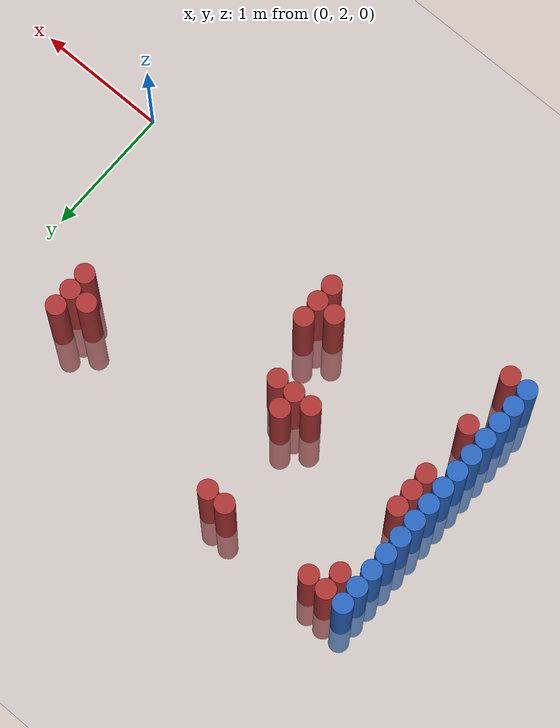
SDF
<sdf version="1.6">
 <world name="default">
  <model name="ground_plane">
   <static>1</static>
   <link name="link">
    <collision name="collision">
     <geometry><plane><normal>0 0 1</normal><size>100 100</size></plane></geometry>
     <surface><friction><ode><mu>100</mu><mu2>50</mu2></ode></friction></surface>
    </collision>
    <visual name="visual">
     <cast_shadows>0</cast_shadows>
     <geometry><plane><normal>0 0 1</normal><size>100 100</size></plane></geometry>
     <material>
      <script><uri>file://media/materials/scripts/gazebo.material</uri><name>Gazebo/Grey</name></script>
     </material>
    </visual>
   </link>
  </model>
  <model name="unit_cylinder_141">
   <static>1</static>
   <pose>-3.425000 1.975000 0.000000 0.000000 0.000000 0.000000</pose>
   <link name="link">
    <inertial>
     <mass>1</mass>
     <inertia><ixx>0.145833</ixx><ixy>0</ixy><ixz>0</ixz><iyy>0.145833</iyy><iyz>0</iyz><izz>0.125</izz></inertia>
    </inertial>
    <collision name="collision">
     <geometry><cylinder><radius>0.075000</radius><length>1.5</length></cylinder></geometry>
    </collision>
    <visual name="visual">
     <geometry><cylinder><radius>0.075000</radius><length>1.5</length></cylinder></geometry>
     <material>
      <ambient>0.152000 0.379000 0.720000 1</ambient>
      <diffuse>0.152000 0.379000 0.720000 1</diffuse>
     </material>
     <material>
      <script><name>Gazebo/Grey</name><uri>file://media/materials/scripts/gazebo.material</uri></script>
     </material>
    </visual>
   </link>
  </model>
  <model name="unit_cylinder_143">
   <static>1</static>
   <pose>-3.425000 2.125000 0.000000 0.000000 0.000000 0.000000</pose>
   <link name="link">
    <inertial>
     <mass>1</mass>
     <inertia><ixx>0.145833</ixx><ixy>0</ixy><ixz>0</ixz><iyy>0.145833</iyy><iyz>0</iyz><izz>0.125</izz></inertia>
    </inertial>
    <collision name="collision">
     <geometry><cylinder><radius>0.075000</radius><length>1.5</length></cylinder></geometry>
    </collision>
    <visual name="visual">
     <geometry><cylinder><radius>0.075000</radius><length>1.5</length></cylinder></geometry>
     <material>
      <ambient>0.152000 0.379000 0.720000 1</ambient>
      <diffuse>0.152000 0.379000 0.720000 1</diffuse>
     </material>
     <material>
      <script><name>Gazebo/Grey</name><uri>file://media/materials/scripts/gazebo.material</uri></script>
     </material>
    </visual>
   </link>
  </model>
  <model name="unit_cylinder_145">
   <static>1</static>
   <pose>-3.425000 2.275000 0.000000 0.000000 0.000000 0.000000</pose>
   <link name="link">
    <inertial>
     <mass>1</mass>
     <inertia><ixx>0.145833</ixx><ixy>0</ixy><ixz>0</ixz><iyy>0.145833</iyy><iyz>0</iyz><izz>0.125</izz></inertia>
    </inertial>
    <collision name="collision">
     <geometry><cylinder><radius>0.075000</radius><length>1.5</length></cylinder></geometry>
    </collision>
    <visual name="visual">
     <geometry><cylinder><radius>0.075000</radius><length>1.5</length></cylinder></geometry>
     <material>
      <ambient>0.152000 0.379000 0.720000 1</ambient>
      <diffuse>0.152000 0.379000 0.720000 1</diffuse>
     </material>
     <material>
      <script><name>Gazebo/Grey</name><uri>file://media/materials/scripts/gazebo.material</uri></script>
     </material>
    </visual>
   </link>
  </model>
  <model name="unit_cylinder_147">
   <static>1</static>
   <pose>-3.425000 2.425000 0.000000 0.000000 0.000000 0.000000</pose>
   <link name="link">
    <inertial>
     <mass>1</mass>
     <inertia><ixx>0.145833</ixx><ixy>0</ixy><ixz>0</ixz><iyy>0.145833</iyy><iyz>0</iyz><izz>0.125</izz></inertia>
    </inertial>
    <collision name="collision">
     <geometry><cylinder><radius>0.075000</radius><length>1.5</length></cylinder></geometry>
    </collision>
    <visual name="visual">
     <geometry><cylinder><radius>0.075000</radius><length>1.5</length></cylinder></geometry>
     <material>
      <ambient>0.152000 0.379000 0.720000 1</ambient>
      <diffuse>0.152000 0.379000 0.720000 1</diffuse>
     </material>
     <material>
      <script><name>Gazebo/Grey</name><uri>file://media/materials/scripts/gazebo.material</uri></script>
     </material>
    </visual>
   </link>
  </model>
  <model name="unit_cylinder_149">
   <static>1</static>
   <pose>-3.425000 2.575000 0.000000 0.000000 0.000000 0.000000</pose>
   <link name="link">
    <inertial>
     <mass>1</mass>
     <inertia><ixx>0.145833</ixx><ixy>0</ixy><ixz>0</ixz><iyy>0.145833</iyy><iyz>0</iyz><izz>0.125</izz></inertia>
    </inertial>
    <collision name="collision">
     <geometry><cylinder><radius>0.075000</radius><length>1.5</length></cylinder></geometry>
    </collision>
    <visual name="visual">
     <geometry><cylinder><radius>0.075000</radius><length>1.5</length></cylinder></geometry>
     <material>
      <ambient>0.152000 0.379000 0.720000 1</ambient>
      <diffuse>0.152000 0.379000 0.720000 1</diffuse>
     </material>
     <material>
      <script><name>Gazebo/Grey</name><uri>file://media/materials/scripts/gazebo.material</uri></script>
     </material>
    </visual>
   </link>
  </model>
  <model name="unit_cylinder_151">
   <static>1</static>
   <pose>-3.425000 2.725000 0.000000 0.000000 0.000000 0.000000</pose>
   <link name="link">
    <inertial>
     <mass>1</mass>
     <inertia><ixx>0.145833</ixx><ixy>0</ixy><ixz>0</ixz><iyy>0.145833</iyy><iyz>0</iyz><izz>0.125</izz></inertia>
    </inertial>
    <collision name="collision">
     <geometry><cylinder><radius>0.075000</radius><length>1.5</length></cylinder></geometry>
    </collision>
    <visual name="visual">
     <geometry><cylinder><radius>0.075000</radius><length>1.5</length></cylinder></geometry>
     <material>
      <ambient>0.152000 0.379000 0.720000 1</ambient>
      <diffuse>0.152000 0.379000 0.720000 1</diffuse>
     </material>
     <material>
      <script><name>Gazebo/Grey</name><uri>file://media/materials/scripts/gazebo.material</uri></script>
     </material>
    </visual>
   </link>
  </model>
  <model name="unit_cylinder_153">
   <static>1</static>
   <pose>-3.425000 2.875000 0.000000 0.000000 0.000000 0.000000</pose>
   <link name="link">
    <inertial>
     <mass>1</mass>
     <inertia><ixx>0.145833</ixx><ixy>0</ixy><ixz>0</ixz><iyy>0.145833</iyy><iyz>0</iyz><izz>0.125</izz></inertia>
    </inertial>
    <collision name="collision">
     <geometry><cylinder><radius>0.075000</radius><length>1.5</length></cylinder></geometry>
    </collision>
    <visual name="visual">
     <geometry><cylinder><radius>0.075000</radius><length>1.5</length></cylinder></geometry>
     <material>
      <ambient>0.152000 0.379000 0.720000 1</ambient>
      <diffuse>0.152000 0.379000 0.720000 1</diffuse>
     </material>
     <material>
      <script><name>Gazebo/Grey</name><uri>file://media/materials/scripts/gazebo.material</uri></script>
     </material>
    </visual>
   </link>
  </model>
  <model name="unit_cylinder_155">
   <static>1</static>
   <pose>-3.425000 3.025000 0.000000 0.000000 0.000000 0.000000</pose>
   <link name="link">
    <inertial>
     <mass>1</mass>
     <inertia><ixx>0.145833</ixx><ixy>0</ixy><ixz>0</ixz><iyy>0.145833</iyy><iyz>0</iyz><izz>0.125</izz></inertia>
    </inertial>
    <collision name="collision">
     <geometry><cylinder><radius>0.075000</radius><length>1.5</length></cylinder></geometry>
    </collision>
    <visual name="visual">
     <geometry><cylinder><radius>0.075000</radius><length>1.5</length></cylinder></geometry>
     <material>
      <ambient>0.152000 0.379000 0.720000 1</ambient>
      <diffuse>0.152000 0.379000 0.720000 1</diffuse>
     </material>
     <material>
      <script><name>Gazebo/Grey</name><uri>file://media/materials/scripts/gazebo.material</uri></script>
     </material>
    </visual>
   </link>
  </model>
  <model name="unit_cylinder_157">
   <static>1</static>
   <pose>-3.425000 3.175000 0.000000 0.000000 0.000000 0.000000</pose>
   <link name="link">
    <inertial>
     <mass>1</mass>
     <inertia><ixx>0.145833</ixx><ixy>0</ixy><ixz>0</ixz><iyy>0.145833</iyy><iyz>0</iyz><izz>0.125</izz></inertia>
    </inertial>
    <collision name="collision">
     <geometry><cylinder><radius>0.075000</radius><length>1.5</length></cylinder></geometry>
    </collision>
    <visual name="visual">
     <geometry><cylinder><radius>0.075000</radius><length>1.5</length></cylinder></geometry>
     <material>
      <ambient>0.152000 0.379000 0.720000 1</ambient>
      <diffuse>0.152000 0.379000 0.720000 1</diffuse>
     </material>
     <material>
      <script><name>Gazebo/Grey</name><uri>file://media/materials/scripts/gazebo.material</uri></script>
     </material>
    </visual>
   </link>
  </model>
  <model name="unit_cylinder_159">
   <static>1</static>
   <pose>-3.425000 3.325000 0.000000 0.000000 0.000000 0.000000</pose>
   <link name="link">
    <inertial>
     <mass>1</mass>
     <inertia><ixx>0.145833</ixx><ixy>0</ixy><ixz>0</ixz><iyy>0.145833</iyy><iyz>0</iyz><izz>0.125</izz></inertia>
    </inertial>
    <collision name="collision">
     <geometry><cylinder><radius>0.075000</radius><length>1.5</length></cylinder></geometry>
    </collision>
    <visual name="visual">
     <geometry><cylinder><radius>0.075000</radius><length>1.5</length></cylinder></geometry>
     <material>
      <ambient>0.152000 0.379000 0.720000 1</ambient>
      <diffuse>0.152000 0.379000 0.720000 1</diffuse>
     </material>
     <material>
      <script><name>Gazebo/Grey</name><uri>file://media/materials/scripts/gazebo.material</uri></script>
     </material>
    </visual>
   </link>
  </model>
  <model name="unit_cylinder_161">
   <static>1</static>
   <pose>-3.425000 3.475000 0.000000 0.000000 0.000000 0.000000</pose>
   <link name="link">
    <inertial>
     <mass>1</mass>
     <inertia><ixx>0.145833</ixx><ixy>0</ixy><ixz>0</ixz><iyy>0.145833</iyy><iyz>0</iyz><izz>0.125</izz></inertia>
    </inertial>
    <collision name="collision">
     <geometry><cylinder><radius>0.075000</radius><length>1.5</length></cylinder></geometry>
    </collision>
    <visual name="visual">
     <geometry><cylinder><radius>0.075000</radius><length>1.5</length></cylinder></geometry>
     <material>
      <ambient>0.152000 0.379000 0.720000 1</ambient>
      <diffuse>0.152000 0.379000 0.720000 1</diffuse>
     </material>
     <material>
      <script><name>Gazebo/Grey</name><uri>file://media/materials/scripts/gazebo.material</uri></script>
     </material>
    </visual>
   </link>
  </model>
  <model name="unit_cylinder_163">
   <static>1</static>
   <pose>-3.425000 3.625000 0.000000 0.000000 0.000000 0.000000</pose>
   <link name="link">
    <inertial>
     <mass>1</mass>
     <inertia><ixx>0.145833</ixx><ixy>0</ixy><ixz>0</ixz><iyy>0.145833</iyy><iyz>0</iyz><izz>0.125</izz></inertia>
    </inertial>
    <collision name="collision">
     <geometry><cylinder><radius>0.075000</radius><length>1.5</length></cylinder></geometry>
    </collision>
    <visual name="visual">
     <geometry><cylinder><radius>0.075000</radius><length>1.5</length></cylinder></geometry>
     <material>
      <ambient>0.152000 0.379000 0.720000 1</ambient>
      <diffuse>0.152000 0.379000 0.720000 1</diffuse>
     </material>
     <material>
      <script><name>Gazebo/Grey</name><uri>file://media/materials/scripts/gazebo.material</uri></script>
     </material>
    </visual>
   </link>
  </model>
  <model name="unit_cylinder_165">
   <static>1</static>
   <pose>-3.425000 3.775000 0.000000 0.000000 0.000000 0.000000</pose>
   <link name="link">
    <inertial>
     <mass>1</mass>
     <inertia><ixx>0.145833</ixx><ixy>0</ixy><ixz>0</ixz><iyy>0.145833</iyy><iyz>0</iyz><izz>0.125</izz></inertia>
    </inertial>
    <collision name="collision">
     <geometry><cylinder><radius>0.075000</radius><length>1.5</length></cylinder></geometry>
    </collision>
    <visual name="visual">
     <geometry><cylinder><radius>0.075000</radius><length>1.5</length></cylinder></geometry>
     <material>
      <ambient>0.152000 0.379000 0.720000 1</ambient>
      <diffuse>0.152000 0.379000 0.720000 1</diffuse>
     </material>
     <material>
      <script><name>Gazebo/Grey</name><uri>file://media/materials/scripts/gazebo.material</uri></script>
     </material>
    </visual>
   </link>
  </model>
  <model name="unit_cylinder_167">
   <static>1</static>
   <pose>-3.425000 3.925000 0.000000 0.000000 0.000000 0.000000</pose>
   <link name="link">
    <inertial>
     <mass>1</mass>
     <inertia><ixx>0.145833</ixx><ixy>0</ixy><ixz>0</ixz><iyy>0.145833</iyy><iyz>0</iyz><izz>0.125</izz></inertia>
    </inertial>
    <collision name="collision">
     <geometry><cylinder><radius>0.075000</radius><length>1.5</length></cylinder></geometry>
    </collision>
    <visual name="visual">
     <geometry><cylinder><radius>0.075000</radius><length>1.5</length></cylinder></geometry>
     <material>
      <ambient>0.152000 0.379000 0.720000 1</ambient>
      <diffuse>0.152000 0.379000 0.720000 1</diffuse>
     </material>
     <material>
      <script><name>Gazebo/Grey</name><uri>file://media/materials/scripts/gazebo.material</uri></script>
     </material>
    </visual>
   </link>
  </model>
  <model name="unit_cylinder_234">
   <static>1</static>
   <pose>-3.425000 1.975000 0.000000 0.000000 0.000000 0.000000</pose>
   <link name="link">
    <inertial>
     <mass>1</mass>
     <inertia><ixx>0.145833</ixx><ixy>0</ixy><ixz>0</ixz><iyy>0.145833</iyy><iyz>0</iyz><izz>0.125</izz></inertia>
    </inertial>
    <collision name="collision">
     <geometry><cylinder><radius>0.075000</radius><length>1.5</length></cylinder></geometry>
    </collision>
    <visual name="visual">
     <geometry><cylinder><radius>0.075000</radius><length>1.5</length></cylinder></geometry>
     <material>
      <ambient>0.152000 0.379000 0.720000 1</ambient>
      <diffuse>0.152000 0.379000 0.720000 1</diffuse>
     </material>
     <material>
      <script><name>Gazebo/Grey</name><uri>file://media/materials/scripts/gazebo.material</uri></script>
     </material>
    </visual>
   </link>
  </model>
  <model name="unit_cylinder_235">
   <static>1</static>
   <pose>-3.425000 2.125000 0.000000 0.000000 0.000000 0.000000</pose>
   <link name="link">
    <inertial>
     <mass>1</mass>
     <inertia><ixx>0.145833</ixx><ixy>0</ixy><ixz>0</ixz><iyy>0.145833</iyy><iyz>0</iyz><izz>0.125</izz></inertia>
    </inertial>
    <collision name="collision">
     <geometry><cylinder><radius>0.075000</radius><length>1.5</length></cylinder></geometry>
    </collision>
    <visual name="visual">
     <geometry><cylinder><radius>0.075000</radius><length>1.5</length></cylinder></geometry>
     <material>
      <ambient>0.152000 0.379000 0.720000 1</ambient>
      <diffuse>0.152000 0.379000 0.720000 1</diffuse>
     </material>
     <material>
      <script><name>Gazebo/Grey</name><uri>file://media/materials/scripts/gazebo.material</uri></script>
     </material>
    </visual>
   </link>
  </model>
  <model name="unit_cylinder_236">
   <static>1</static>
   <pose>-3.425000 2.275000 0.000000 0.000000 0.000000 0.000000</pose>
   <link name="link">
    <inertial>
     <mass>1</mass>
     <inertia><ixx>0.145833</ixx><ixy>0</ixy><ixz>0</ixz><iyy>0.145833</iyy><iyz>0</iyz><izz>0.125</izz></inertia>
    </inertial>
    <collision name="collision">
     <geometry><cylinder><radius>0.075000</radius><length>1.5</length></cylinder></geometry>
    </collision>
    <visual name="visual">
     <geometry><cylinder><radius>0.075000</radius><length>1.5</length></cylinder></geometry>
     <material>
      <ambient>0.152000 0.379000 0.720000 1</ambient>
      <diffuse>0.152000 0.379000 0.720000 1</diffuse>
     </material>
     <material>
      <script><name>Gazebo/Grey</name><uri>file://media/materials/scripts/gazebo.material</uri></script>
     </material>
    </visual>
   </link>
  </model>
  <model name="unit_cylinder_237">
   <static>1</static>
   <pose>-3.425000 2.425000 0.000000 0.000000 0.000000 0.000000</pose>
   <link name="link">
    <inertial>
     <mass>1</mass>
     <inertia><ixx>0.145833</ixx><ixy>0</ixy><ixz>0</ixz><iyy>0.145833</iyy><iyz>0</iyz><izz>0.125</izz></inertia>
    </inertial>
    <collision name="collision">
     <geometry><cylinder><radius>0.075000</radius><length>1.5</length></cylinder></geometry>
    </collision>
    <visual name="visual">
     <geometry><cylinder><radius>0.075000</radius><length>1.5</length></cylinder></geometry>
     <material>
      <ambient>0.152000 0.379000 0.720000 1</ambient>
      <diffuse>0.152000 0.379000 0.720000 1</diffuse>
     </material>
     <material>
      <script><name>Gazebo/Grey</name><uri>file://media/materials/scripts/gazebo.material</uri></script>
     </material>
    </visual>
   </link>
  </model>
  <model name="unit_cylinder_238">
   <static>1</static>
   <pose>-3.425000 2.575000 0.000000 0.000000 0.000000 0.000000</pose>
   <link name="link">
    <inertial>
     <mass>1</mass>
     <inertia><ixx>0.145833</ixx><ixy>0</ixy><ixz>0</ixz><iyy>0.145833</iyy><iyz>0</iyz><izz>0.125</izz></inertia>
    </inertial>
    <collision name="collision">
     <geometry><cylinder><radius>0.075000</radius><length>1.5</length></cylinder></geometry>
    </collision>
    <visual name="visual">
     <geometry><cylinder><radius>0.075000</radius><length>1.5</length></cylinder></geometry>
     <material>
      <ambient>0.152000 0.379000 0.720000 1</ambient>
      <diffuse>0.152000 0.379000 0.720000 1</diffuse>
     </material>
     <material>
      <script><name>Gazebo/Grey</name><uri>file://media/materials/scripts/gazebo.material</uri></script>
     </material>
    </visual>
   </link>
  </model>
  <model name="unit_cylinder_239">
   <static>1</static>
   <pose>-3.425000 2.725000 0.000000 0.000000 0.000000 0.000000</pose>
   <link name="link">
    <inertial>
     <mass>1</mass>
     <inertia><ixx>0.145833</ixx><ixy>0</ixy><ixz>0</ixz><iyy>0.145833</iyy><iyz>0</iyz><izz>0.125</izz></inertia>
    </inertial>
    <collision name="collision">
     <geometry><cylinder><radius>0.075000</radius><length>1.5</length></cylinder></geometry>
    </collision>
    <visual name="visual">
     <geometry><cylinder><radius>0.075000</radius><length>1.5</length></cylinder></geometry>
     <material>
      <ambient>0.152000 0.379000 0.720000 1</ambient>
      <diffuse>0.152000 0.379000 0.720000 1</diffuse>
     </material>
     <material>
      <script><name>Gazebo/Grey</name><uri>file://media/materials/scripts/gazebo.material</uri></script>
     </material>
    </visual>
   </link>
  </model>
  <model name="unit_cylinder_240">
   <static>1</static>
   <pose>-3.425000 2.875000 0.000000 0.000000 0.000000 0.000000</pose>
   <link name="link">
    <inertial>
     <mass>1</mass>
     <inertia><ixx>0.145833</ixx><ixy>0</ixy><ixz>0</ixz><iyy>0.145833</iyy><iyz>0</iyz><izz>0.125</izz></inertia>
    </inertial>
    <collision name="collision">
     <geometry><cylinder><radius>0.075000</radius><length>1.5</length></cylinder></geometry>
    </collision>
    <visual name="visual">
     <geometry><cylinder><radius>0.075000</radius><length>1.5</length></cylinder></geometry>
     <material>
      <ambient>0.152000 0.379000 0.720000 1</ambient>
      <diffuse>0.152000 0.379000 0.720000 1</diffuse>
     </material>
     <material>
      <script><name>Gazebo/Grey</name><uri>file://media/materials/scripts/gazebo.material</uri></script>
     </material>
    </visual>
   </link>
  </model>
  <model name="unit_cylinder_241">
   <static>1</static>
   <pose>-3.425000 3.025000 0.000000 0.000000 0.000000 0.000000</pose>
   <link name="link">
    <inertial>
     <mass>1</mass>
     <inertia><ixx>0.145833</ixx><ixy>0</ixy><ixz>0</ixz><iyy>0.145833</iyy><iyz>0</iyz><izz>0.125</izz></inertia>
    </inertial>
    <collision name="collision">
     <geometry><cylinder><radius>0.075000</radius><length>1.5</length></cylinder></geometry>
    </collision>
    <visual name="visual">
     <geometry><cylinder><radius>0.075000</radius><length>1.5</length></cylinder></geometry>
     <material>
      <ambient>0.152000 0.379000 0.720000 1</ambient>
      <diffuse>0.152000 0.379000 0.720000 1</diffuse>
     </material>
     <material>
      <script><name>Gazebo/Grey</name><uri>file://media/materials/scripts/gazebo.material</uri></script>
     </material>
    </visual>
   </link>
  </model>
  <model name="unit_cylinder_242">
   <static>1</static>
   <pose>-3.425000 3.175000 0.000000 0.000000 0.000000 0.000000</pose>
   <link name="link">
    <inertial>
     <mass>1</mass>
     <inertia><ixx>0.145833</ixx><ixy>0</ixy><ixz>0</ixz><iyy>0.145833</iyy><iyz>0</iyz><izz>0.125</izz></inertia>
    </inertial>
    <collision name="collision">
     <geometry><cylinder><radius>0.075000</radius><length>1.5</length></cylinder></geometry>
    </collision>
    <visual name="visual">
     <geometry><cylinder><radius>0.075000</radius><length>1.5</length></cylinder></geometry>
     <material>
      <ambient>0.152000 0.379000 0.720000 1</ambient>
      <diffuse>0.152000 0.379000 0.720000 1</diffuse>
     </material>
     <material>
      <script><name>Gazebo/Grey</name><uri>file://media/materials/scripts/gazebo.material</uri></script>
     </material>
    </visual>
   </link>
  </model>
  <model name="unit_cylinder_243">
   <static>1</static>
   <pose>-3.425000 3.325000 0.000000 0.000000 0.000000 0.000000</pose>
   <link name="link">
    <inertial>
     <mass>1</mass>
     <inertia><ixx>0.145833</ixx><ixy>0</ixy><ixz>0</ixz><iyy>0.145833</iyy><iyz>0</iyz><izz>0.125</izz></inertia>
    </inertial>
    <collision name="collision">
     <geometry><cylinder><radius>0.075000</radius><length>1.5</length></cylinder></geometry>
    </collision>
    <visual name="visual">
     <geometry><cylinder><radius>0.075000</radius><length>1.5</length></cylinder></geometry>
     <material>
      <ambient>0.152000 0.379000 0.720000 1</ambient>
      <diffuse>0.152000 0.379000 0.720000 1</diffuse>
     </material>
     <material>
      <script><name>Gazebo/Grey</name><uri>file://media/materials/scripts/gazebo.material</uri></script>
     </material>
    </visual>
   </link>
  </model>
  <model name="unit_cylinder_244">
   <static>1</static>
   <pose>-3.425000 3.475000 0.000000 0.000000 0.000000 0.000000</pose>
   <link name="link">
    <inertial>
     <mass>1</mass>
     <inertia><ixx>0.145833</ixx><ixy>0</ixy><ixz>0</ixz><iyy>0.145833</iyy><iyz>0</iyz><izz>0.125</izz></inertia>
    </inertial>
    <collision name="collision">
     <geometry><cylinder><radius>0.075000</radius><length>1.5</length></cylinder></geometry>
    </collision>
    <visual name="visual">
     <geometry><cylinder><radius>0.075000</radius><length>1.5</length></cylinder></geometry>
     <material>
      <ambient>0.152000 0.379000 0.720000 1</ambient>
      <diffuse>0.152000 0.379000 0.720000 1</diffuse>
     </material>
     <material>
      <script><name>Gazebo/Grey</name><uri>file://media/materials/scripts/gazebo.material</uri></script>
     </material>
    </visual>
   </link>
  </model>
  <model name="unit_cylinder_245">
   <static>1</static>
   <pose>-3.425000 3.625000 0.000000 0.000000 0.000000 0.000000</pose>
   <link name="link">
    <inertial>
     <mass>1</mass>
     <inertia><ixx>0.145833</ixx><ixy>0</ixy><ixz>0</ixz><iyy>0.145833</iyy><iyz>0</iyz><izz>0.125</izz></inertia>
    </inertial>
    <collision name="collision">
     <geometry><cylinder><radius>0.075000</radius><length>1.5</length></cylinder></geometry>
    </collision>
    <visual name="visual">
     <geometry><cylinder><radius>0.075000</radius><length>1.5</length></cylinder></geometry>
     <material>
      <ambient>0.152000 0.379000 0.720000 1</ambient>
      <diffuse>0.152000 0.379000 0.720000 1</diffuse>
     </material>
     <material>
      <script><name>Gazebo/Grey</name><uri>file://media/materials/scripts/gazebo.material</uri></script>
     </material>
    </visual>
   </link>
  </model>
  <model name="unit_cylinder_246">
   <static>1</static>
   <pose>-3.425000 3.775000 0.000000 0.000000 0.000000 0.000000</pose>
   <link name="link">
    <inertial>
     <mass>1</mass>
     <inertia><ixx>0.145833</ixx><ixy>0</ixy><ixz>0</ixz><iyy>0.145833</iyy><iyz>0</iyz><izz>0.125</izz></inertia>
    </inertial>
    <collision name="collision">
     <geometry><cylinder><radius>0.075000</radius><length>1.5</length></cylinder></geometry>
    </collision>
    <visual name="visual">
     <geometry><cylinder><radius>0.075000</radius><length>1.5</length></cylinder></geometry>
     <material>
      <ambient>0.152000 0.379000 0.720000 1</ambient>
      <diffuse>0.152000 0.379000 0.720000 1</diffuse>
     </material>
     <material>
      <script><name>Gazebo/Grey</name><uri>file://media/materials/scripts/gazebo.material</uri></script>
     </material>
    </visual>
   </link>
  </model>
  <model name="unit_cylinder_247">
   <static>1</static>
   <pose>-3.425000 3.925000 0.000000 0.000000 0.000000 0.000000</pose>
   <link name="link">
    <inertial>
     <mass>1</mass>
     <inertia><ixx>0.145833</ixx><ixy>0</ixy><ixz>0</ixz><iyy>0.145833</iyy><iyz>0</iyz><izz>0.125</izz></inertia>
    </inertial>
    <collision name="collision">
     <geometry><cylinder><radius>0.075000</radius><length>1.5</length></cylinder></geometry>
    </collision>
    <visual name="visual">
     <geometry><cylinder><radius>0.075000</radius><length>1.5</length></cylinder></geometry>
     <material>
      <ambient>0.152000 0.379000 0.720000 1</ambient>
      <diffuse>0.152000 0.379000 0.720000 1</diffuse>
     </material>
     <material>
      <script><name>Gazebo/Grey</name><uri>file://media/materials/scripts/gazebo.material</uri></script>
     </material>
    </visual>
   </link>
  </model>
  <model name="unit_cylinder_268">
   <static>1</static>
   <pose>-3.275000 1.975000 0.000000 0.000000 0.000000 0.000000</pose>
   <link name="link">
    <inertial>
     <mass>1</mass>
     <inertia><ixx>0.145833</ixx><ixy>0</ixy><ixz>0</ixz><iyy>0.145833</iyy><iyz>0</iyz><izz>0.125</izz></inertia>
    </inertial>
    <collision name="collision">
     <geometry><cylinder><radius>0.075000</radius><length>1.5</length></cylinder></geometry>
    </collision>
    <visual name="visual">
     <geometry><cylinder><radius>0.075000</radius><length>1.5</length></cylinder></geometry>
     <material>
      <ambient>0.648000 0.192000 0.192000 1</ambient>
      <diffuse>0.648000 0.192000 0.192000 1</diffuse>
     </material>
     <material>
      <script><name>Gazebo/Grey</name><uri>file://media/materials/scripts/gazebo.material</uri></script>
     </material>
    </visual>
   </link>
  </model>
  <model name="unit_cylinder_269">
   <static>1</static>
   <pose>-3.275000 2.425000 0.000000 0.000000 0.000000 0.000000</pose>
   <link name="link">
    <inertial>
     <mass>1</mass>
     <inertia><ixx>0.145833</ixx><ixy>0</ixy><ixz>0</ixz><iyy>0.145833</iyy><iyz>0</iyz><izz>0.125</izz></inertia>
    </inertial>
    <collision name="collision">
     <geometry><cylinder><radius>0.075000</radius><length>1.5</length></cylinder></geometry>
    </collision>
    <visual name="visual">
     <geometry><cylinder><radius>0.075000</radius><length>1.5</length></cylinder></geometry>
     <material>
      <ambient>0.648000 0.192000 0.192000 1</ambient>
      <diffuse>0.648000 0.192000 0.192000 1</diffuse>
     </material>
     <material>
      <script><name>Gazebo/Grey</name><uri>file://media/materials/scripts/gazebo.material</uri></script>
     </material>
    </visual>
   </link>
  </model>
  <model name="unit_cylinder_270">
   <static>1</static>
   <pose>-3.275000 2.875000 0.000000 0.000000 0.000000 0.000000</pose>
   <link name="link">
    <inertial>
     <mass>1</mass>
     <inertia><ixx>0.145833</ixx><ixy>0</ixy><ixz>0</ixz><iyy>0.145833</iyy><iyz>0</iyz><izz>0.125</izz></inertia>
    </inertial>
    <collision name="collision">
     <geometry><cylinder><radius>0.075000</radius><length>1.5</length></cylinder></geometry>
    </collision>
    <visual name="visual">
     <geometry><cylinder><radius>0.075000</radius><length>1.5</length></cylinder></geometry>
     <material>
      <ambient>0.648000 0.192000 0.192000 1</ambient>
      <diffuse>0.648000 0.192000 0.192000 1</diffuse>
     </material>
     <material>
      <script><name>Gazebo/Grey</name><uri>file://media/materials/scripts/gazebo.material</uri></script>
     </material>
    </visual>
   </link>
  </model>
  <model name="unit_cylinder_271">
   <static>1</static>
   <pose>-3.275000 3.025000 0.000000 0.000000 0.000000 0.000000</pose>
   <link name="link">
    <inertial>
     <mass>1</mass>
     <inertia><ixx>0.145833</ixx><ixy>0</ixy><ixz>0</ixz><iyy>0.145833</iyy><iyz>0</iyz><izz>0.125</izz></inertia>
    </inertial>
    <collision name="collision">
     <geometry><cylinder><radius>0.075000</radius><length>1.5</length></cylinder></geometry>
    </collision>
    <visual name="visual">
     <geometry><cylinder><radius>0.075000</radius><length>1.5</length></cylinder></geometry>
     <material>
      <ambient>0.648000 0.192000 0.192000 1</ambient>
      <diffuse>0.648000 0.192000 0.192000 1</diffuse>
     </material>
     <material>
      <script><name>Gazebo/Grey</name><uri>file://media/materials/scripts/gazebo.material</uri></script>
     </material>
    </visual>
   </link>
  </model>
  <model name="unit_cylinder_272">
   <static>1</static>
   <pose>-3.275000 3.175000 0.000000 0.000000 0.000000 0.000000</pose>
   <link name="link">
    <inertial>
     <mass>1</mass>
     <inertia><ixx>0.145833</ixx><ixy>0</ixy><ixz>0</ixz><iyy>0.145833</iyy><iyz>0</iyz><izz>0.125</izz></inertia>
    </inertial>
    <collision name="collision">
     <geometry><cylinder><radius>0.075000</radius><length>1.5</length></cylinder></geometry>
    </collision>
    <visual name="visual">
     <geometry><cylinder><radius>0.075000</radius><length>1.5</length></cylinder></geometry>
     <material>
      <ambient>0.648000 0.192000 0.192000 1</ambient>
      <diffuse>0.648000 0.192000 0.192000 1</diffuse>
     </material>
     <material>
      <script><name>Gazebo/Grey</name><uri>file://media/materials/scripts/gazebo.material</uri></script>
     </material>
    </visual>
   </link>
  </model>
  <model name="unit_cylinder_273">
   <static>1</static>
   <pose>-3.275000 3.775000 0.000000 0.000000 0.000000 0.000000</pose>
   <link name="link">
    <inertial>
     <mass>1</mass>
     <inertia><ixx>0.145833</ixx><ixy>0</ixy><ixz>0</ixz><iyy>0.145833</iyy><iyz>0</iyz><izz>0.125</izz></inertia>
    </inertial>
    <collision name="collision">
     <geometry><cylinder><radius>0.075000</radius><length>1.5</length></cylinder></geometry>
    </collision>
    <visual name="visual">
     <geometry><cylinder><radius>0.075000</radius><length>1.5</length></cylinder></geometry>
     <material>
      <ambient>0.648000 0.192000 0.192000 1</ambient>
      <diffuse>0.648000 0.192000 0.192000 1</diffuse>
     </material>
     <material>
      <script><name>Gazebo/Grey</name><uri>file://media/materials/scripts/gazebo.material</uri></script>
     </material>
    </visual>
   </link>
  </model>
  <model name="unit_cylinder_274">
   <static>1</static>
   <pose>-3.275000 3.925000 0.000000 0.000000 0.000000 0.000000</pose>
   <link name="link">
    <inertial>
     <mass>1</mass>
     <inertia><ixx>0.145833</ixx><ixy>0</ixy><ixz>0</ixz><iyy>0.145833</iyy><iyz>0</iyz><izz>0.125</izz></inertia>
    </inertial>
    <collision name="collision">
     <geometry><cylinder><radius>0.075000</radius><length>1.5</length></cylinder></geometry>
    </collision>
    <visual name="visual">
     <geometry><cylinder><radius>0.075000</radius><length>1.5</length></cylinder></geometry>
     <material>
      <ambient>0.648000 0.192000 0.192000 1</ambient>
      <diffuse>0.648000 0.192000 0.192000 1</diffuse>
     </material>
     <material>
      <script><name>Gazebo/Grey</name><uri>file://media/materials/scripts/gazebo.material</uri></script>
     </material>
    </visual>
   </link>
  </model>
  <model name="unit_cylinder_286">
   <static>1</static>
   <pose>-3.125000 3.925000 0.000000 0.000000 0.000000 0.000000</pose>
   <link name="link">
    <inertial>
     <mass>1</mass>
     <inertia><ixx>0.145833</ixx><ixy>0</ixy><ixz>0</ixz><iyy>0.145833</iyy><iyz>0</iyz><izz>0.125</izz></inertia>
    </inertial>
    <collision name="collision">
     <geometry><cylinder><radius>0.075000</radius><length>1.5</length></cylinder></geometry>
    </collision>
    <visual name="visual">
     <geometry><cylinder><radius>0.075000</radius><length>1.5</length></cylinder></geometry>
     <material>
      <ambient>0.648000 0.192000 0.192000 1</ambient>
      <diffuse>0.648000 0.192000 0.192000 1</diffuse>
     </material>
     <material>
      <script><name>Gazebo/Grey</name><uri>file://media/materials/scripts/gazebo.material</uri></script>
     </material>
    </visual>
   </link>
  </model>
  <model name="unit_cylinder_327">
   <static>1</static>
   <pose>-2.375000 3.025000 0.000000 0.000000 0.000000 0.000000</pose>
   <link name="link">
    <inertial>
     <mass>1</mass>
     <inertia><ixx>0.145833</ixx><ixy>0</ixy><ixz>0</ixz><iyy>0.145833</iyy><iyz>0</iyz><izz>0.125</izz></inertia>
    </inertial>
    <collision name="collision">
     <geometry><cylinder><radius>0.075000</radius><length>1.5</length></cylinder></geometry>
    </collision>
    <visual name="visual">
     <geometry><cylinder><radius>0.075000</radius><length>1.5</length></cylinder></geometry>
     <material>
      <ambient>0.648000 0.192000 0.192000 1</ambient>
      <diffuse>0.648000 0.192000 0.192000 1</diffuse>
     </material>
     <material>
      <script><name>Gazebo/Grey</name><uri>file://media/materials/scripts/gazebo.material</uri></script>
     </material>
    </visual>
   </link>
  </model>
  <model name="unit_cylinder_328">
   <static>1</static>
   <pose>-2.375000 3.925000 0.000000 0.000000 0.000000 0.000000</pose>
   <link name="link">
    <inertial>
     <mass>1</mass>
     <inertia><ixx>0.145833</ixx><ixy>0</ixy><ixz>0</ixz><iyy>0.145833</iyy><iyz>0</iyz><izz>0.125</izz></inertia>
    </inertial>
    <collision name="collision">
     <geometry><cylinder><radius>0.075000</radius><length>1.5</length></cylinder></geometry>
    </collision>
    <visual name="visual">
     <geometry><cylinder><radius>0.075000</radius><length>1.5</length></cylinder></geometry>
     <material>
      <ambient>0.648000 0.192000 0.192000 1</ambient>
      <diffuse>0.648000 0.192000 0.192000 1</diffuse>
     </material>
     <material>
      <script><name>Gazebo/Grey</name><uri>file://media/materials/scripts/gazebo.material</uri></script>
     </material>
    </visual>
   </link>
  </model>
  <model name="unit_cylinder_334">
   <static>1</static>
   <pose>-2.225000 3.025000 0.000000 0.000000 0.000000 0.000000</pose>
   <link name="link">
    <inertial>
     <mass>1</mass>
     <inertia><ixx>0.145833</ixx><ixy>0</ixy><ixz>0</ixz><iyy>0.145833</iyy><iyz>0</iyz><izz>0.125</izz></inertia>
    </inertial>
    <collision name="collision">
     <geometry><cylinder><radius>0.075000</radius><length>1.5</length></cylinder></geometry>
    </collision>
    <visual name="visual">
     <geometry><cylinder><radius>0.075000</radius><length>1.5</length></cylinder></geometry>
     <material>
      <ambient>0.648000 0.192000 0.192000 1</ambient>
      <diffuse>0.648000 0.192000 0.192000 1</diffuse>
     </material>
     <material>
      <script><name>Gazebo/Grey</name><uri>file://media/materials/scripts/gazebo.material</uri></script>
     </material>
    </visual>
   </link>
  </model>
  <model name="unit_cylinder_335">
   <static>1</static>
   <pose>-2.225000 3.175000 0.000000 0.000000 0.000000 0.000000</pose>
   <link name="link">
    <inertial>
     <mass>1</mass>
     <inertia><ixx>0.145833</ixx><ixy>0</ixy><ixz>0</ixz><iyy>0.145833</iyy><iyz>0</iyz><izz>0.125</izz></inertia>
    </inertial>
    <collision name="collision">
     <geometry><cylinder><radius>0.075000</radius><length>1.5</length></cylinder></geometry>
    </collision>
    <visual name="visual">
     <geometry><cylinder><radius>0.075000</radius><length>1.5</length></cylinder></geometry>
     <material>
      <ambient>0.648000 0.192000 0.192000 1</ambient>
      <diffuse>0.648000 0.192000 0.192000 1</diffuse>
     </material>
     <material>
      <script><name>Gazebo/Grey</name><uri>file://media/materials/scripts/gazebo.material</uri></script>
     </material>
    </visual>
   </link>
  </model>
  <model name="unit_cylinder_336">
   <static>1</static>
   <pose>-2.225000 3.925000 0.000000 0.000000 0.000000 0.000000</pose>
   <link name="link">
    <inertial>
     <mass>1</mass>
     <inertia><ixx>0.145833</ixx><ixy>0</ixy><ixz>0</ixz><iyy>0.145833</iyy><iyz>0</iyz><izz>0.125</izz></inertia>
    </inertial>
    <collision name="collision">
     <geometry><cylinder><radius>0.075000</radius><length>1.5</length></cylinder></geometry>
    </collision>
    <visual name="visual">
     <geometry><cylinder><radius>0.075000</radius><length>1.5</length></cylinder></geometry>
     <material>
      <ambient>0.648000 0.192000 0.192000 1</ambient>
      <diffuse>0.648000 0.192000 0.192000 1</diffuse>
     </material>
     <material>
      <script><name>Gazebo/Grey</name><uri>file://media/materials/scripts/gazebo.material</uri></script>
     </material>
    </visual>
   </link>
  </model>
  <model name="unit_cylinder_343">
   <static>1</static>
   <pose>-2.075000 2.425000 0.000000 0.000000 0.000000 0.000000</pose>
   <link name="link">
    <inertial>
     <mass>1</mass>
     <inertia><ixx>0.145833</ixx><ixy>0</ixy><ixz>0</ixz><iyy>0.145833</iyy><iyz>0</iyz><izz>0.125</izz></inertia>
    </inertial>
    <collision name="collision">
     <geometry><cylinder><radius>0.075000</radius><length>1.5</length></cylinder></geometry>
    </collision>
    <visual name="visual">
     <geometry><cylinder><radius>0.075000</radius><length>1.5</length></cylinder></geometry>
     <material>
      <ambient>0.648000 0.192000 0.192000 1</ambient>
      <diffuse>0.648000 0.192000 0.192000 1</diffuse>
     </material>
     <material>
      <script><name>Gazebo/Grey</name><uri>file://media/materials/scripts/gazebo.material</uri></script>
     </material>
    </visual>
   </link>
  </model>
  <model name="unit_cylinder_344">
   <static>1</static>
   <pose>-2.075000 3.025000 0.000000 0.000000 0.000000 0.000000</pose>
   <link name="link">
    <inertial>
     <mass>1</mass>
     <inertia><ixx>0.145833</ixx><ixy>0</ixy><ixz>0</ixz><iyy>0.145833</iyy><iyz>0</iyz><izz>0.125</izz></inertia>
    </inertial>
    <collision name="collision">
     <geometry><cylinder><radius>0.075000</radius><length>1.5</length></cylinder></geometry>
    </collision>
    <visual name="visual">
     <geometry><cylinder><radius>0.075000</radius><length>1.5</length></cylinder></geometry>
     <material>
      <ambient>0.648000 0.192000 0.192000 1</ambient>
      <diffuse>0.648000 0.192000 0.192000 1</diffuse>
     </material>
     <material>
      <script><name>Gazebo/Grey</name><uri>file://media/materials/scripts/gazebo.material</uri></script>
     </material>
    </visual>
   </link>
  </model>
  <model name="unit_cylinder_350">
   <static>1</static>
   <pose>-1.925000 2.275000 0.000000 0.000000 0.000000 0.000000</pose>
   <link name="link">
    <inertial>
     <mass>1</mass>
     <inertia><ixx>0.145833</ixx><ixy>0</ixy><ixz>0</ixz><iyy>0.145833</iyy><iyz>0</iyz><izz>0.125</izz></inertia>
    </inertial>
    <collision name="collision">
     <geometry><cylinder><radius>0.075000</radius><length>1.5</length></cylinder></geometry>
    </collision>
    <visual name="visual">
     <geometry><cylinder><radius>0.075000</radius><length>1.5</length></cylinder></geometry>
     <material>
      <ambient>0.648000 0.192000 0.192000 1</ambient>
      <diffuse>0.648000 0.192000 0.192000 1</diffuse>
     </material>
     <material>
      <script><name>Gazebo/Grey</name><uri>file://media/materials/scripts/gazebo.material</uri></script>
     </material>
    </visual>
   </link>
  </model>
  <model name="unit_cylinder_351">
   <static>1</static>
   <pose>-1.925000 2.425000 0.000000 0.000000 0.000000 0.000000</pose>
   <link name="link">
    <inertial>
     <mass>1</mass>
     <inertia><ixx>0.145833</ixx><ixy>0</ixy><ixz>0</ixz><iyy>0.145833</iyy><iyz>0</iyz><izz>0.125</izz></inertia>
    </inertial>
    <collision name="collision">
     <geometry><cylinder><radius>0.075000</radius><length>1.5</length></cylinder></geometry>
    </collision>
    <visual name="visual">
     <geometry><cylinder><radius>0.075000</radius><length>1.5</length></cylinder></geometry>
     <material>
      <ambient>0.648000 0.192000 0.192000 1</ambient>
      <diffuse>0.648000 0.192000 0.192000 1</diffuse>
     </material>
     <material>
      <script><name>Gazebo/Grey</name><uri>file://media/materials/scripts/gazebo.material</uri></script>
     </material>
    </visual>
   </link>
  </model>
  <model name="unit_cylinder_352">
   <static>1</static>
   <pose>-1.925000 2.575000 0.000000 0.000000 0.000000 0.000000</pose>
   <link name="link">
    <inertial>
     <mass>1</mass>
     <inertia><ixx>0.145833</ixx><ixy>0</ixy><ixz>0</ixz><iyy>0.145833</iyy><iyz>0</iyz><izz>0.125</izz></inertia>
    </inertial>
    <collision name="collision">
     <geometry><cylinder><radius>0.075000</radius><length>1.5</length></cylinder></geometry>
    </collision>
    <visual name="visual">
     <geometry><cylinder><radius>0.075000</radius><length>1.5</length></cylinder></geometry>
     <material>
      <ambient>0.648000 0.192000 0.192000 1</ambient>
      <diffuse>0.648000 0.192000 0.192000 1</diffuse>
     </material>
     <material>
      <script><name>Gazebo/Grey</name><uri>file://media/materials/scripts/gazebo.material</uri></script>
     </material>
    </visual>
   </link>
  </model>
  <model name="unit_cylinder_367">
   <static>1</static>
   <pose>-0.725000 3.475000 0.000000 0.000000 0.000000 0.000000</pose>
   <link name="link">
    <inertial>
     <mass>1</mass>
     <inertia><ixx>0.145833</ixx><ixy>0</ixy><ixz>0</ixz><iyy>0.145833</iyy><iyz>0</iyz><izz>0.125</izz></inertia>
    </inertial>
    <collision name="collision">
     <geometry><cylinder><radius>0.075000</radius><length>1.5</length></cylinder></geometry>
    </collision>
    <visual name="visual">
     <geometry><cylinder><radius>0.075000</radius><length>1.5</length></cylinder></geometry>
     <material>
      <ambient>0.648000 0.192000 0.192000 1</ambient>
      <diffuse>0.648000 0.192000 0.192000 1</diffuse>
     </material>
     <material>
      <script><name>Gazebo/Grey</name><uri>file://media/materials/scripts/gazebo.material</uri></script>
     </material>
    </visual>
   </link>
  </model>
  <model name="unit_cylinder_371">
   <static>1</static>
   <pose>-0.575000 3.325000 0.000000 0.000000 0.000000 0.000000</pose>
   <link name="link">
    <inertial>
     <mass>1</mass>
     <inertia><ixx>0.145833</ixx><ixy>0</ixy><ixz>0</ixz><iyy>0.145833</iyy><iyz>0</iyz><izz>0.125</izz></inertia>
    </inertial>
    <collision name="collision">
     <geometry><cylinder><radius>0.075000</radius><length>1.5</length></cylinder></geometry>
    </collision>
    <visual name="visual">
     <geometry><cylinder><radius>0.075000</radius><length>1.5</length></cylinder></geometry>
     <material>
      <ambient>0.648000 0.192000 0.192000 1</ambient>
      <diffuse>0.648000 0.192000 0.192000 1</diffuse>
     </material>
     <material>
      <script><name>Gazebo/Grey</name><uri>file://media/materials/scripts/gazebo.material</uri></script>
     </material>
    </visual>
   </link>
  </model>
  <model name="unit_cylinder_372">
   <static>1</static>
   <pose>-0.575000 3.475000 0.000000 0.000000 0.000000 0.000000</pose>
   <link name="link">
    <inertial>
     <mass>1</mass>
     <inertia><ixx>0.145833</ixx><ixy>0</ixy><ixz>0</ixz><iyy>0.145833</iyy><iyz>0</iyz><izz>0.125</izz></inertia>
    </inertial>
    <collision name="collision">
     <geometry><cylinder><radius>0.075000</radius><length>1.5</length></cylinder></geometry>
    </collision>
    <visual name="visual">
     <geometry><cylinder><radius>0.075000</radius><length>1.5</length></cylinder></geometry>
     <material>
      <ambient>0.648000 0.192000 0.192000 1</ambient>
      <diffuse>0.648000 0.192000 0.192000 1</diffuse>
     </material>
     <material>
      <script><name>Gazebo/Grey</name><uri>file://media/materials/scripts/gazebo.material</uri></script>
     </material>
    </visual>
   </link>
  </model>
  <model name="unit_cylinder_373">
   <static>1</static>
   <pose>-0.575000 3.625000 0.000000 0.000000 0.000000 0.000000</pose>
   <link name="link">
    <inertial>
     <mass>1</mass>
     <inertia><ixx>0.145833</ixx><ixy>0</ixy><ixz>0</ixz><iyy>0.145833</iyy><iyz>0</iyz><izz>0.125</izz></inertia>
    </inertial>
    <collision name="collision">
     <geometry><cylinder><radius>0.075000</radius><length>1.5</length></cylinder></geometry>
    </collision>
    <visual name="visual">
     <geometry><cylinder><radius>0.075000</radius><length>1.5</length></cylinder></geometry>
     <material>
      <ambient>0.648000 0.192000 0.192000 1</ambient>
      <diffuse>0.648000 0.192000 0.192000 1</diffuse>
     </material>
     <material>
      <script><name>Gazebo/Grey</name><uri>file://media/materials/scripts/gazebo.material</uri></script>
     </material>
    </visual>
   </link>
  </model>
 </world>
</sdf>
